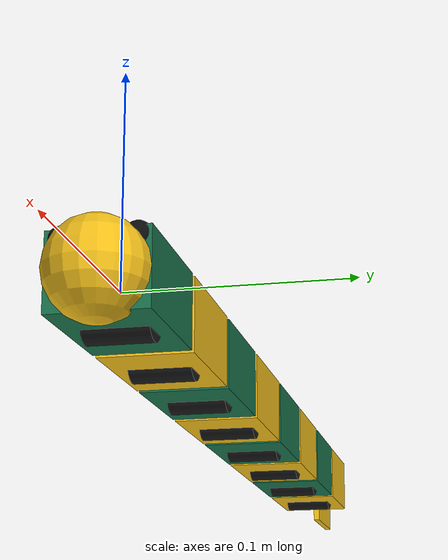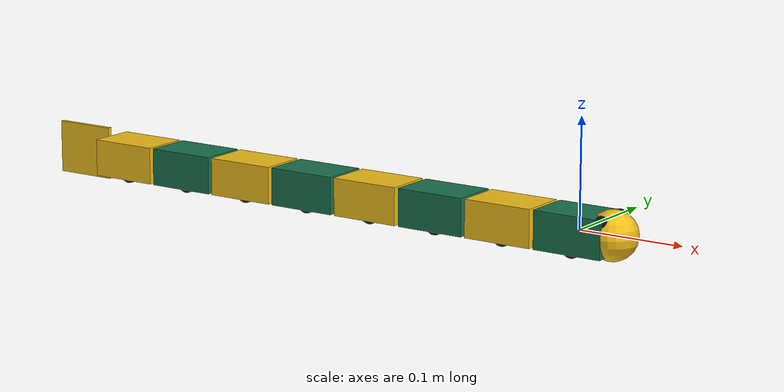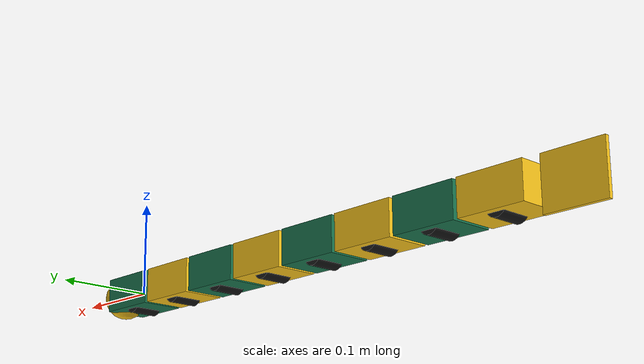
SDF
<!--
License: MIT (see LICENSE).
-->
<?xml version="1.0"?>
<sdf version="1.9">
  <model name="amphibot">

    <link name="head">
      <pose>0.000 0 0 0 0 0</pose>
      <inertial>
        <mass>0.1</mass>
        <inertia>
          <ixx>2.7083e-05</ixx><ixy>0</ixy><ixz>0</ixz>
          <iyy>5.1042e-05</iyy><iyz>0</iyz>
          <izz>5.7708e-05</izz>
        </inertia>
      </inertial>
      <collision name="head_collision">
        <geometry><box><size>0.068 0.045 0.035</size></box></geometry>
        <surface>
          <friction>
            <!-- Anisotropic friction (like a snake's belly scales):
                 low along the body axis (fdir1 = x), high sideways (mu2). -->
            <ode><mu>0.15</mu><mu2>1.0</mu2><fdir1>1 0 0</fdir1></ode>
          </friction>
        </surface>
      </collision>
      <visual name="head_visual">
        <geometry><box><size>0.066 0.045 0.035</size></box></geometry>
        <material><ambient>0.1 0.45 0.3 1</ambient><diffuse>0.1 0.45 0.3 1</diffuse></material>
      </visual>
      <visual name="head_nose">
        <pose>0.033 0 0 0 0 0</pose>
        <geometry><sphere><radius>0.0225</radius></sphere></geometry>
        <material><ambient>0.95 0.75 0.1 1</ambient><diffuse>0.95 0.75 0.1 1</diffuse></material>
      </visual>
      <visual name="head_eye_left">
        <pose>0.03 0.016 0.014 0 0 0</pose>
        <geometry><sphere><radius>0.006</radius></sphere></geometry>
        <material><ambient>0.05 0.05 0.05 1</ambient><diffuse>0.05 0.05 0.05 1</diffuse></material>
      </visual>
      <visual name="head_eye_right">
        <pose>0.03 -0.016 0.014 0 0 0</pose>
        <geometry><sphere><radius>0.006</radius></sphere></geometry>
        <material><ambient>0.05 0.05 0.05 1</ambient><diffuse>0.05 0.05 0.05 1</diffuse></material>
      </visual>
    </link>
    <link name="seg1">
      <pose>-0.070 0 0 0 0 0</pose>
      <inertial>
        <mass>0.09</mass>
        <inertia>
          <ixx>2.4375e-05</ixx><ixy>0</ixy><ixz>0</ixz>
          <iyy>4.5938e-05</iyy><iyz>0</iyz>
          <izz>5.1938e-05</izz>
        </inertia>
      </inertial>
      <collision name="seg1_collision">
        <geometry><box><size>0.068 0.045 0.035</size></box></geometry>
        <surface>
          <friction>
            <!-- Anisotropic friction (like a snake's belly scales):
                 low along the body axis (fdir1 = x), high sideways (mu2). -->
            <ode><mu>0.15</mu><mu2>1.0</mu2><fdir1>1 0 0</fdir1></ode>
          </friction>
        </surface>
      </collision>
      <visual name="seg1_visual">
        <geometry><box><size>0.066 0.045 0.035</size></box></geometry>
        <material><ambient>0.95 0.75 0.1 1</ambient><diffuse>0.95 0.75 0.1 1</diffuse></material>
      </visual>
    </link>
    <joint name="joint1" type="revolute">
      <parent>head</parent>
      <child>seg1</child>
      <pose>0.035 0 0 0 0 0</pose>  <!-- front face of the child segment -->
      <axis>
        <xyz>0 0 1</xyz>  <!-- yaw joint: horizontal undulation -->
        <limit><lower>-1.0</lower><upper>1.0</upper><effort>2.0</effort><velocity>6.0</velocity></limit>
        <dynamics><damping>0.01</damping></dynamics>
      </axis>
    </joint>
    <link name="seg2">
      <pose>-0.140 0 0 0 0 0</pose>
      <inertial>
        <mass>0.09</mass>
        <inertia>
          <ixx>2.4375e-05</ixx><ixy>0</ixy><ixz>0</ixz>
          <iyy>4.5938e-05</iyy><iyz>0</iyz>
          <izz>5.1938e-05</izz>
        </inertia>
      </inertial>
      <collision name="seg2_collision">
        <geometry><box><size>0.068 0.045 0.035</size></box></geometry>
        <surface>
          <friction>
            <!-- Anisotropic friction (like a snake's belly scales):
                 low along the body axis (fdir1 = x), high sideways (mu2). -->
            <ode><mu>0.15</mu><mu2>1.0</mu2><fdir1>1 0 0</fdir1></ode>
          </friction>
        </surface>
      </collision>
      <visual name="seg2_visual">
        <geometry><box><size>0.066 0.045 0.035</size></box></geometry>
        <material><ambient>0.1 0.45 0.3 1</ambient><diffuse>0.1 0.45 0.3 1</diffuse></material>
      </visual>
    </link>
    <joint name="joint2" type="revolute">
      <parent>seg1</parent>
      <child>seg2</child>
      <pose>0.035 0 0 0 0 0</pose>  <!-- front face of the child segment -->
      <axis>
        <xyz>0 0 1</xyz>  <!-- yaw joint: horizontal undulation -->
        <limit><lower>-1.0</lower><upper>1.0</upper><effort>2.0</effort><velocity>6.0</velocity></limit>
        <dynamics><damping>0.01</damping></dynamics>
      </axis>
    </joint>
    <link name="seg3">
      <pose>-0.210 0 0 0 0 0</pose>
      <inertial>
        <mass>0.09</mass>
        <inertia>
          <ixx>2.4375e-05</ixx><ixy>0</ixy><ixz>0</ixz>
          <iyy>4.5938e-05</iyy><iyz>0</iyz>
          <izz>5.1938e-05</izz>
        </inertia>
      </inertial>
      <collision name="seg3_collision">
        <geometry><box><size>0.068 0.045 0.035</size></box></geometry>
        <surface>
          <friction>
            <!-- Anisotropic friction (like a snake's belly scales):
                 low along the body axis (fdir1 = x), high sideways (mu2). -->
            <ode><mu>0.15</mu><mu2>1.0</mu2><fdir1>1 0 0</fdir1></ode>
          </friction>
        </surface>
      </collision>
      <visual name="seg3_visual">
        <geometry><box><size>0.066 0.045 0.035</size></box></geometry>
        <material><ambient>0.95 0.75 0.1 1</ambient><diffuse>0.95 0.75 0.1 1</diffuse></material>
      </visual>
    </link>
    <joint name="joint3" type="revolute">
      <parent>seg2</parent>
      <child>seg3</child>
      <pose>0.035 0 0 0 0 0</pose>  <!-- front face of the child segment -->
      <axis>
        <xyz>0 0 1</xyz>  <!-- yaw joint: horizontal undulation -->
        <limit><lower>-1.0</lower><upper>1.0</upper><effort>2.0</effort><velocity>6.0</velocity></limit>
        <dynamics><damping>0.01</damping></dynamics>
      </axis>
    </joint>
    <link name="seg4">
      <pose>-0.280 0 0 0 0 0</pose>
      <inertial>
        <mass>0.09</mass>
        <inertia>
          <ixx>2.4375e-05</ixx><ixy>0</ixy><ixz>0</ixz>
          <iyy>4.5938e-05</iyy><iyz>0</iyz>
          <izz>5.1938e-05</izz>
        </inertia>
      </inertial>
      <collision name="seg4_collision">
        <geometry><box><size>0.068 0.045 0.035</size></box></geometry>
        <surface>
          <friction>
            <!-- Anisotropic friction (like a snake's belly scales):
                 low along the body axis (fdir1 = x), high sideways (mu2). -->
            <ode><mu>0.15</mu><mu2>1.0</mu2><fdir1>1 0 0</fdir1></ode>
          </friction>
        </surface>
      </collision>
      <visual name="seg4_visual">
        <geometry><box><size>0.066 0.045 0.035</size></box></geometry>
        <material><ambient>0.1 0.45 0.3 1</ambient><diffuse>0.1 0.45 0.3 1</diffuse></material>
      </visual>
    </link>
    <joint name="joint4" type="revolute">
      <parent>seg3</parent>
      <child>seg4</child>
      <pose>0.035 0 0 0 0 0</pose>  <!-- front face of the child segment -->
      <axis>
        <xyz>0 0 1</xyz>  <!-- yaw joint: horizontal undulation -->
        <limit><lower>-1.0</lower><upper>1.0</upper><effort>2.0</effort><velocity>6.0</velocity></limit>
        <dynamics><damping>0.01</damping></dynamics>
      </axis>
    </joint>
    <link name="seg5">
      <pose>-0.350 0 0 0 0 0</pose>
      <inertial>
        <mass>0.09</mass>
        <inertia>
          <ixx>2.4375e-05</ixx><ixy>0</ixy><ixz>0</ixz>
          <iyy>4.5938e-05</iyy><iyz>0</iyz>
          <izz>5.1938e-05</izz>
        </inertia>
      </inertial>
      <collision name="seg5_collision">
        <geometry><box><size>0.068 0.045 0.035</size></box></geometry>
        <surface>
          <friction>
            <!-- Anisotropic friction (like a snake's belly scales):
                 low along the body axis (fdir1 = x), high sideways (mu2). -->
            <ode><mu>0.15</mu><mu2>1.0</mu2><fdir1>1 0 0</fdir1></ode>
          </friction>
        </surface>
      </collision>
      <visual name="seg5_visual">
        <geometry><box><size>0.066 0.045 0.035</size></box></geometry>
        <material><ambient>0.95 0.75 0.1 1</ambient><diffuse>0.95 0.75 0.1 1</diffuse></material>
      </visual>
    </link>
    <joint name="joint5" type="revolute">
      <parent>seg4</parent>
      <child>seg5</child>
      <pose>0.035 0 0 0 0 0</pose>  <!-- front face of the child segment -->
      <axis>
        <xyz>0 0 1</xyz>  <!-- yaw joint: horizontal undulation -->
        <limit><lower>-1.0</lower><upper>1.0</upper><effort>2.0</effort><velocity>6.0</velocity></limit>
        <dynamics><damping>0.01</damping></dynamics>
      </axis>
    </joint>
    <link name="seg6">
      <pose>-0.420 0 0 0 0 0</pose>
      <inertial>
        <mass>0.09</mass>
        <inertia>
          <ixx>2.4375e-05</ixx><ixy>0</ixy><ixz>0</ixz>
          <iyy>4.5938e-05</iyy><iyz>0</iyz>
          <izz>5.1938e-05</izz>
        </inertia>
      </inertial>
      <collision name="seg6_collision">
        <geometry><box><size>0.068 0.045 0.035</size></box></geometry>
        <surface>
          <friction>
            <!-- Anisotropic friction (like a snake's belly scales):
                 low along the body axis (fdir1 = x), high sideways (mu2). -->
            <ode><mu>0.15</mu><mu2>1.0</mu2><fdir1>1 0 0</fdir1></ode>
          </friction>
        </surface>
      </collision>
      <visual name="seg6_visual">
        <geometry><box><size>0.066 0.045 0.035</size></box></geometry>
        <material><ambient>0.1 0.45 0.3 1</ambient><diffuse>0.1 0.45 0.3 1</diffuse></material>
      </visual>
    </link>
    <joint name="joint6" type="revolute">
      <parent>seg5</parent>
      <child>seg6</child>
      <pose>0.035 0 0 0 0 0</pose>  <!-- front face of the child segment -->
      <axis>
        <xyz>0 0 1</xyz>  <!-- yaw joint: horizontal undulation -->
        <limit><lower>-1.0</lower><upper>1.0</upper><effort>2.0</effort><velocity>6.0</velocity></limit>
        <dynamics><damping>0.01</damping></dynamics>
      </axis>
    </joint>
    <link name="seg7">
      <pose>-0.490 0 0 0 0 0</pose>
      <inertial>
        <mass>0.09</mass>
        <inertia>
          <ixx>2.4375e-05</ixx><ixy>0</ixy><ixz>0</ixz>
          <iyy>4.5938e-05</iyy><iyz>0</iyz>
          <izz>5.1938e-05</izz>
        </inertia>
      </inertial>
      <collision name="seg7_collision">
        <geometry><box><size>0.068 0.045 0.035</size></box></geometry>
        <surface>
          <friction>
            <!-- Anisotropic friction (like a snake's belly scales):
                 low along the body axis (fdir1 = x), high sideways (mu2). -->
            <ode><mu>0.15</mu><mu2>1.0</mu2><fdir1>1 0 0</fdir1></ode>
          </friction>
        </surface>
      </collision>
      <visual name="seg7_visual">
        <geometry><box><size>0.066 0.045 0.035</size></box></geometry>
        <material><ambient>0.95 0.75 0.1 1</ambient><diffuse>0.95 0.75 0.1 1</diffuse></material>
      </visual>
      <visual name="seg7_tail_fin">
        <pose>-0.065 0 0 0 0 0</pose>
        <geometry><box><size>0.06 0.004 0.05</size></box></geometry>
        <material><ambient>0.95 0.75 0.1 1</ambient><diffuse>0.95 0.75 0.1 1</diffuse></material>
      </visual>
    </link>
    <joint name="joint7" type="revolute">
      <parent>seg6</parent>
      <child>seg7</child>
      <pose>0.035 0 0 0 0 0</pose>  <!-- front face of the child segment -->
      <axis>
        <xyz>0 0 1</xyz>  <!-- yaw joint: horizontal undulation -->
        <limit><lower>-1.0</lower><upper>1.0</upper><effort>2.0</effort><velocity>6.0</velocity></limit>
        <dynamics><damping>0.01</damping></dynamics>
      </axis>
    </joint>
    <!-- Publishes the model pose so the gait script can tell land from water -->
    <link name="head_wheel">
      <pose>0.000 0 -0.012 0 0 0</pose>
      <inertial>
        <mass>0.005</mass>
        <inertia>
          <ixx>5.0000e-07</ixx><ixy>0</ixy><ixz>0</ixz>
          <iyy>2.5000e-07</iyy><iyz>0</iyz>
          <izz>5.0000e-07</izz>
        </inertia>
      </inertial>
      <collision name="head_wheel_collision">
        <pose>0 0 0 1.5708 0 0</pose>
        <geometry><cylinder><radius>0.01</radius><length>0.03</length></cylinder></geometry>
      </collision>
      <visual name="head_wheel_visual">
        <pose>0 0 0 1.5708 0 0</pose>
        <geometry><cylinder><radius>0.01</radius><length>0.03</length></cylinder></geometry>
        <material><ambient>0.1 0.1 0.1 1</ambient><diffuse>0.1 0.1 0.1 1</diffuse></material>
      </visual>
    </link>
    <joint name="head_wheel_joint" type="revolute">
      <parent>head</parent>
      <child>head_wheel</child>
      <axis>
        <xyz>0 1 0</xyz>  <!-- rolls along the body -->
      </axis>
    </joint>
    <link name="seg1_wheel">
      <pose>-0.070 0 -0.012 0 0 0</pose>
      <inertial>
        <mass>0.005</mass>
        <inertia>
          <ixx>5.0000e-07</ixx><ixy>0</ixy><ixz>0</ixz>
          <iyy>2.5000e-07</iyy><iyz>0</iyz>
          <izz>5.0000e-07</izz>
        </inertia>
      </inertial>
      <collision name="seg1_wheel_collision">
        <pose>0 0 0 1.5708 0 0</pose>
        <geometry><cylinder><radius>0.01</radius><length>0.03</length></cylinder></geometry>
      </collision>
      <visual name="seg1_wheel_visual">
        <pose>0 0 0 1.5708 0 0</pose>
        <geometry><cylinder><radius>0.01</radius><length>0.03</length></cylinder></geometry>
        <material><ambient>0.1 0.1 0.1 1</ambient><diffuse>0.1 0.1 0.1 1</diffuse></material>
      </visual>
    </link>
    <joint name="seg1_wheel_joint" type="revolute">
      <parent>seg1</parent>
      <child>seg1_wheel</child>
      <axis>
        <xyz>0 1 0</xyz>  <!-- rolls along the body -->
      </axis>
    </joint>
    <link name="seg2_wheel">
      <pose>-0.140 0 -0.012 0 0 0</pose>
      <inertial>
        <mass>0.005</mass>
        <inertia>
          <ixx>5.0000e-07</ixx><ixy>0</ixy><ixz>0</ixz>
          <iyy>2.5000e-07</iyy><iyz>0</iyz>
          <izz>5.0000e-07</izz>
        </inertia>
      </inertial>
      <collision name="seg2_wheel_collision">
        <pose>0 0 0 1.5708 0 0</pose>
        <geometry><cylinder><radius>0.01</radius><length>0.03</length></cylinder></geometry>
      </collision>
      <visual name="seg2_wheel_visual">
        <pose>0 0 0 1.5708 0 0</pose>
        <geometry><cylinder><radius>0.01</radius><length>0.03</length></cylinder></geometry>
        <material><ambient>0.1 0.1 0.1 1</ambient><diffuse>0.1 0.1 0.1 1</diffuse></material>
      </visual>
    </link>
    <joint name="seg2_wheel_joint" type="revolute">
      <parent>seg2</parent>
      <child>seg2_wheel</child>
      <axis>
        <xyz>0 1 0</xyz>  <!-- rolls along the body -->
      </axis>
    </joint>
    <link name="seg3_wheel">
      <pose>-0.210 0 -0.012 0 0 0</pose>
      <inertial>
        <mass>0.005</mass>
        <inertia>
          <ixx>5.0000e-07</ixx><ixy>0</ixy><ixz>0</ixz>
          <iyy>2.5000e-07</iyy><iyz>0</iyz>
          <izz>5.0000e-07</izz>
        </inertia>
      </inertial>
      <collision name="seg3_wheel_collision">
        <pose>0 0 0 1.5708 0 0</pose>
        <geometry><cylinder><radius>0.01</radius><length>0.03</length></cylinder></geometry>
      </collision>
      <visual name="seg3_wheel_visual">
        <pose>0 0 0 1.5708 0 0</pose>
        <geometry><cylinder><radius>0.01</radius><length>0.03</length></cylinder></geometry>
        <material><ambient>0.1 0.1 0.1 1</ambient><diffuse>0.1 0.1 0.1 1</diffuse></material>
      </visual>
    </link>
    <joint name="seg3_wheel_joint" type="revolute">
      <parent>seg3</parent>
      <child>seg3_wheel</child>
      <axis>
        <xyz>0 1 0</xyz>  <!-- rolls along the body -->
      </axis>
    </joint>
    <link name="seg4_wheel">
      <pose>-0.280 0 -0.012 0 0 0</pose>
      <inertial>
        <mass>0.005</mass>
        <inertia>
          <ixx>5.0000e-07</ixx><ixy>0</ixy><ixz>0</ixz>
          <iyy>2.5000e-07</iyy><iyz>0</iyz>
          <izz>5.0000e-07</izz>
        </inertia>
      </inertial>
      <collision name="seg4_wheel_collision">
        <pose>0 0 0 1.5708 0 0</pose>
        <geometry><cylinder><radius>0.01</radius><length>0.03</length></cylinder></geometry>
      </collision>
      <visual name="seg4_wheel_visual">
        <pose>0 0 0 1.5708 0 0</pose>
        <geometry><cylinder><radius>0.01</radius><length>0.03</length></cylinder></geometry>
        <material><ambient>0.1 0.1 0.1 1</ambient><diffuse>0.1 0.1 0.1 1</diffuse></material>
      </visual>
    </link>
    <joint name="seg4_wheel_joint" type="revolute">
      <parent>seg4</parent>
      <child>seg4_wheel</child>
      <axis>
        <xyz>0 1 0</xyz>  <!-- rolls along the body -->
      </axis>
    </joint>
    <link name="seg5_wheel">
      <pose>-0.350 0 -0.012 0 0 0</pose>
      <inertial>
        <mass>0.005</mass>
        <inertia>
          <ixx>5.0000e-07</ixx><ixy>0</ixy><ixz>0</ixz>
          <iyy>2.5000e-07</iyy><iyz>0</iyz>
          <izz>5.0000e-07</izz>
        </inertia>
      </inertial>
      <collision name="seg5_wheel_collision">
        <pose>0 0 0 1.5708 0 0</pose>
        <geometry><cylinder><radius>0.01</radius><length>0.03</length></cylinder></geometry>
      </collision>
      <visual name="seg5_wheel_visual">
        <pose>0 0 0 1.5708 0 0</pose>
        <geometry><cylinder><radius>0.01</radius><length>0.03</length></cylinder></geometry>
        <material><ambient>0.1 0.1 0.1 1</ambient><diffuse>0.1 0.1 0.1 1</diffuse></material>
      </visual>
    </link>
    <joint name="seg5_wheel_joint" type="revolute">
      <parent>seg5</parent>
      <child>seg5_wheel</child>
      <axis>
        <xyz>0 1 0</xyz>  <!-- rolls along the body -->
      </axis>
    </joint>
    <link name="seg6_wheel">
      <pose>-0.420 0 -0.012 0 0 0</pose>
      <inertial>
        <mass>0.005</mass>
        <inertia>
          <ixx>5.0000e-07</ixx><ixy>0</ixy><ixz>0</ixz>
          <iyy>2.5000e-07</iyy><iyz>0</iyz>
          <izz>5.0000e-07</izz>
        </inertia>
      </inertial>
      <collision name="seg6_wheel_collision">
        <pose>0 0 0 1.5708 0 0</pose>
        <geometry><cylinder><radius>0.01</radius><length>0.03</length></cylinder></geometry>
      </collision>
      <visual name="seg6_wheel_visual">
        <pose>0 0 0 1.5708 0 0</pose>
        <geometry><cylinder><radius>0.01</radius><length>0.03</length></cylinder></geometry>
        <material><ambient>0.1 0.1 0.1 1</ambient><diffuse>0.1 0.1 0.1 1</diffuse></material>
      </visual>
    </link>
    <joint name="seg6_wheel_joint" type="revolute">
      <parent>seg6</parent>
      <child>seg6_wheel</child>
      <axis>
        <xyz>0 1 0</xyz>  <!-- rolls along the body -->
      </axis>
    </joint>
    <link name="seg7_wheel">
      <pose>-0.490 0 -0.012 0 0 0</pose>
      <inertial>
        <mass>0.005</mass>
        <inertia>
          <ixx>5.0000e-07</ixx><ixy>0</ixy><ixz>0</ixz>
          <iyy>2.5000e-07</iyy><iyz>0</iyz>
          <izz>5.0000e-07</izz>
        </inertia>
      </inertial>
      <collision name="seg7_wheel_collision">
        <pose>0 0 0 1.5708 0 0</pose>
        <geometry><cylinder><radius>0.01</radius><length>0.03</length></cylinder></geometry>
      </collision>
      <visual name="seg7_wheel_visual">
        <pose>0 0 0 1.5708 0 0</pose>
        <geometry><cylinder><radius>0.01</radius><length>0.03</length></cylinder></geometry>
        <material><ambient>0.1 0.1 0.1 1</ambient><diffuse>0.1 0.1 0.1 1</diffuse></material>
      </visual>
    </link>
    <joint name="seg7_wheel_joint" type="revolute">
      <parent>seg7</parent>
      <child>seg7_wheel</child>
      <axis>
        <xyz>0 1 0</xyz>  <!-- rolls along the body -->
      </axis>
    </joint>
  </model>
</sdf>
